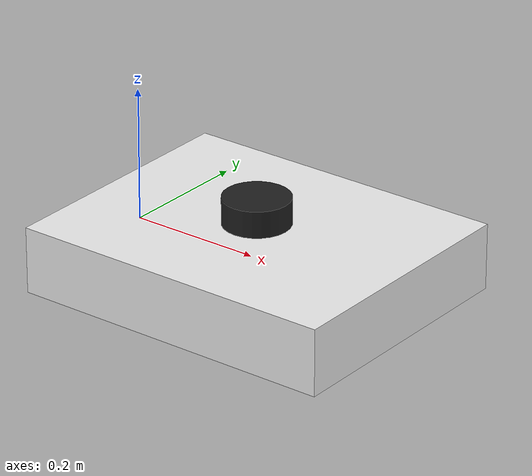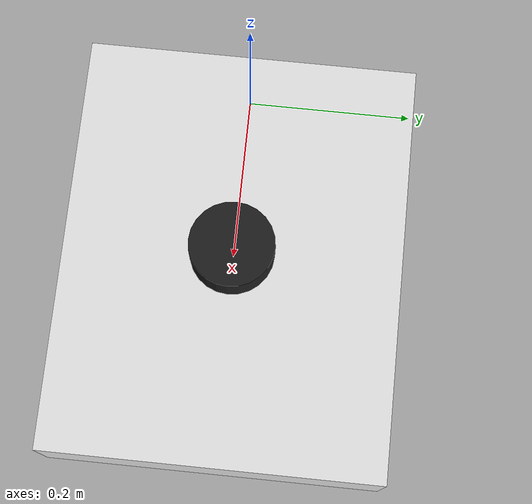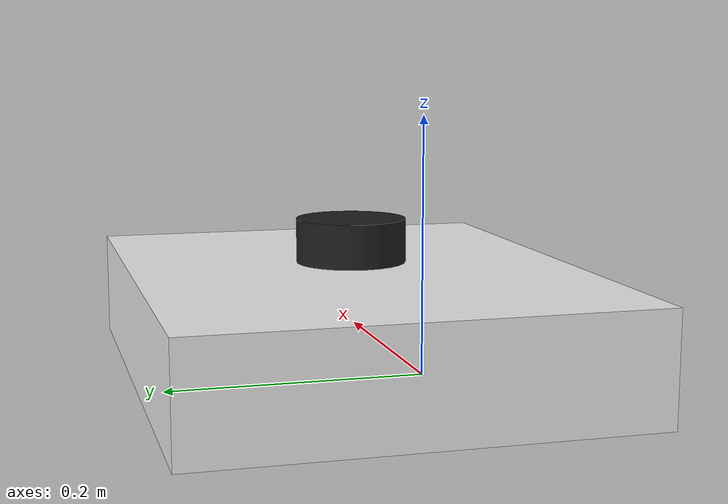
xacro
<?xml version="1.0"?>
<robot xmlns:xacro="http://www.ros.org/wiki/xacro" >

<!--main base plate-->

<link name="main_base_square">
    <visual>
        <origin xyz="0.21 0 0"/>
        <geometry>
            <box size="0.5 0.4 0.1"/>
        </geometry>
        <material name="white"/>
    </visual>

    <collision>
        <origin xyz="0.21 0 0"/>
        <geometry>
            <box size="0.5 0.4 0.1"/>
        </geometry>
    </collision>

    <xacro:inertial_box mass="5" x="0.5" y="0.4" z="0.1">
       <origin xyz="0.21 0 0" rpy="0 0 0"/>
    </xacro:inertial_box>
</link>

<gazebo reference="main_base_square">
    <material>Gazebo/White</material>
    <mu1>100000.0</mu1>
    <mu2>100000.0</mu2>
</gazebo>

<!--joint between base plate and lidar-->

<joint name="base_lidar_joint" type="fixed">
    <parent link="main_base_square"/>
    <child link="lidar"/>
    <origin xyz="0.21 0 0.05" rpy="0 0 0"/>
</joint>

<!--lidar link-->

<link name="lidar">
    <visual>
        <origin xyz="0 0 0.025"/>
        <geometry>
            <cylinder length="0.04" radius="0.05"/>
        </geometry>
        <material name="black"/>
    </visual>

    <collision>
        <origin xyz="0 0 0.025"/>
        <geometry>
            <cylinder length="0.04" radius="0.05"/>
        </geometry>
    </collision>

    <xacro:inertial_cylinder mass="0.1" length="0.04" radius="0.05">
       <origin xyz="0 0 0.025" rpy="0 0 0"/>
    </xacro:inertial_cylinder>
</link>

<gazebo reference="lidar">
    <material>Gazebo/Black</material>
    <mu1>100000.0</mu1>
    <mu2>100000.0</mu2>
</gazebo>

</robot>
